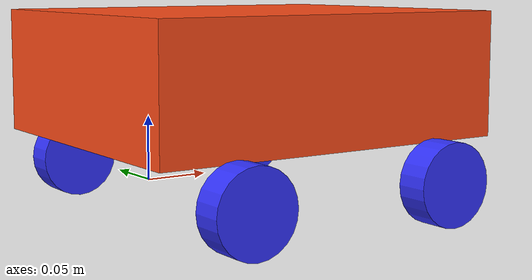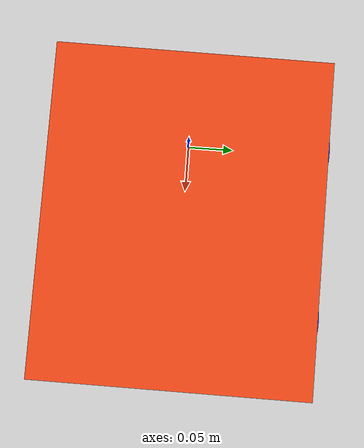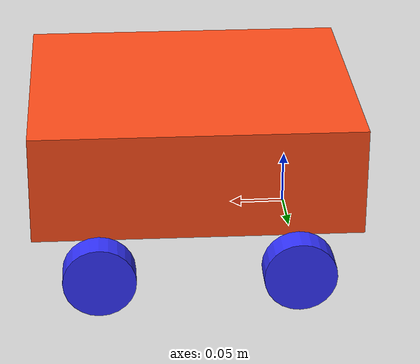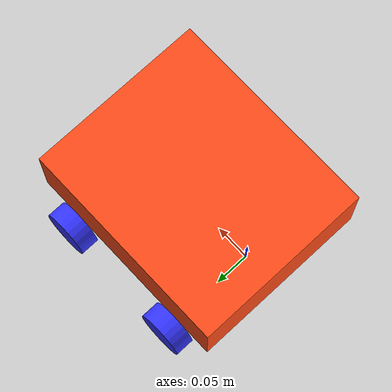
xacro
<?xml version="1.0"?>
<robot xmlns:xacro="http://www.ros.org/wiki/xacro">

<xacro:include filename="inertial_macros.xacro"/>

<!-- CHASSIS SIZE -->

<xacro:property name="chassis_length" value="0.30"/>
<xacro:property name="chassis_width" value="0.25"/>
<xacro:property name="chassis_height" value="0.10"/>
<xacro:property name="chassis_mass" value="1.0"/>

<!-- WHEEL PARAMETERS -->

<xacro:property name="wheel_radius" value="0.033"/>
<xacro:property name="wheel_thickness" value="0.026"/>
<xacro:property name="wheel_mass" value="0.05"/>

<!-- WHEEL POSITIONS -->

<xacro:property name="rear_wheel_offset_x" value="0.06"/>
<xacro:property name="front_wheel_offset_x" value="0.24"/>

<xacro:property name="wheel_offset_y" value="0.138"/>
<xacro:property name="wheel_offset_z" value="-0.03"/>

<!-- MATERIALS -->

<material name="orange">
<color rgba="1 0.3 0.1 1"/>
</material>

<material name="blue">
<color rgba="0.2 0.2 1 1"/>
</material>

<material name="black">
<color rgba="0 0 0 1"/>
</material>

<!-- BASE -->

<link name="base_footprint"/>

<link name="base_link"/>

<joint name="base_joint" type="fixed">
<parent link="base_footprint"/>
<child link="base_link"/>
<origin xyz="0 0 0"/>
</joint>

<!-- CHASSIS -->

<link name="chassis">

<visual>
<origin xyz="${chassis_length/2} 0 ${chassis_height/2}"/>
<geometry>
<box size="${chassis_length} ${chassis_width} ${chassis_height}"/>
</geometry>
<material name="orange"/>
</visual>

<collision>
<origin xyz="${chassis_length/2} 0 ${chassis_height/2}"/>
<geometry>
<box size="${chassis_length} ${chassis_width} ${chassis_height}"/>
</geometry>
</collision>

<xacro:inertial_box
mass="${chassis_mass}"
x="${chassis_length}"
y="${chassis_width}"
z="${chassis_height}">
<origin xyz="${chassis_length/2} 0 ${chassis_height/2}"/>
</xacro:inertial_box>

</link>

<joint name="chassis_joint" type="fixed">
<parent link="base_link"/>
<child link="chassis"/>
<origin xyz="${-rear_wheel_offset_x} 0 ${-wheel_offset_z}"/>
</joint>

<!-- REAR LEFT WHEEL -->

<link name="rear_left_wheel">

<visual>
<geometry>
<cylinder radius="${wheel_radius}" length="${wheel_thickness}"/>
</geometry>
<material name="blue"/>
</visual>

<collision>
<geometry>
<cylinder radius="${wheel_radius}" length="${wheel_thickness}"/>
</geometry>
</collision>

<xacro:inertial_cylinder
mass="${wheel_mass}"
length="${wheel_thickness}"
radius="${wheel_radius}">
<origin xyz="0 0 0"/>
</xacro:inertial_cylinder>

</link>

<joint name="rear_left_wheel_joint" type="continuous">

<parent link="chassis"/>
<child link="rear_left_wheel"/>

<origin xyz="${rear_wheel_offset_x} ${wheel_offset_y} ${wheel_offset_z}"
rpy="-${pi/2} 0 0"/>

<axis xyz="0 0 1"/>

</joint>

<!-- REAR RIGHT WHEEL -->

<link name="rear_right_wheel">

<visual>
<geometry>
<cylinder radius="${wheel_radius}" length="${wheel_thickness}"/>
</geometry>
<material name="blue"/>
</visual>

<collision>
<geometry>
<cylinder radius="${wheel_radius}" length="${wheel_thickness}"/>
</geometry>
</collision>

<xacro:inertial_cylinder
mass="${wheel_mass}"
length="${wheel_thickness}"
radius="${wheel_radius}">
<origin xyz="0 0 0"/>
</xacro:inertial_cylinder>

</link>

<joint name="rear_right_wheel_joint" type="continuous">

<parent link="chassis"/>
<child link="rear_right_wheel"/>

<origin xyz="${rear_wheel_offset_x} ${-wheel_offset_y} ${wheel_offset_z}"
rpy="${pi/2} 0 0"/>

<axis xyz="0 0 -1"/>

</joint>

<!-- FRONT LEFT WHEEL -->

<link name="front_left_wheel">

<visual>
<geometry>
<cylinder radius="${wheel_radius}" length="${wheel_thickness}"/>
</geometry>
<material name="blue"/>
</visual>

<collision>
<geometry>
<cylinder radius="${wheel_radius}" length="${wheel_thickness}"/>
</geometry>
</collision>

<xacro:inertial_cylinder
mass="${wheel_mass}"
length="${wheel_thickness}"
radius="${wheel_radius}">
<origin xyz="0 0 0"/>
</xacro:inertial_cylinder>

</link>

<joint name="front_left_wheel_joint" type="continuous">

<parent link="chassis"/>
<child link="front_left_wheel"/>

<origin xyz="${front_wheel_offset_x} ${wheel_offset_y} ${wheel_offset_z}"
rpy="-${pi/2} 0 0"/>

<axis xyz="0 0 1"/>

</joint>

<!-- FRONT RIGHT WHEEL -->

<link name="front_right_wheel">

<visual>
<geometry>
<cylinder radius="${wheel_radius}" length="${wheel_thickness}"/>
</geometry>
<material name="blue"/>
</visual>

<collision>
<geometry>
<cylinder radius="${wheel_radius}" length="${wheel_thickness}"/>
</geometry>
</collision>

<xacro:inertial_cylinder
mass="${wheel_mass}"
length="${wheel_thickness}"
radius="${wheel_radius}">
<origin xyz="0 0 0"/>
</xacro:inertial_cylinder>

</link>

<joint name="front_right_wheel_joint" type="continuous">

<parent link="chassis"/>
<child link="front_right_wheel"/>

<origin xyz="${front_wheel_offset_x} ${-wheel_offset_y} ${wheel_offset_z}"
rpy="${pi/2} 0 0"/>

<axis xyz="0 0 -1"/>

</joint>

<!-- GAZEBO COLORS -->

<gazebo reference="chassis">
<material>Gazebo/Orange</material>
</gazebo>

<gazebo reference="rear_left_wheel">
<material>Gazebo/Blue</material>
</gazebo>

<gazebo reference="rear_right_wheel">
<material>Gazebo/Blue</material>
</gazebo>

<gazebo reference="front_left_wheel">
<material>Gazebo/Blue</material>
</gazebo>

<gazebo reference="front_right_wheel">
<material>Gazebo/Blue</material>
</gazebo>

</robot>
